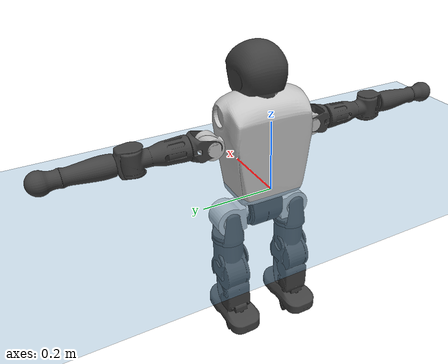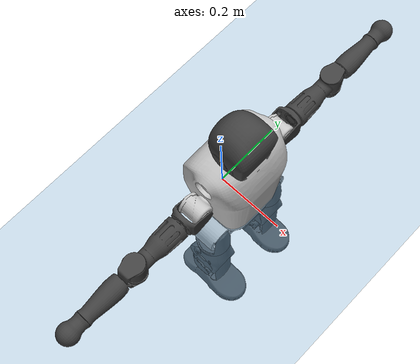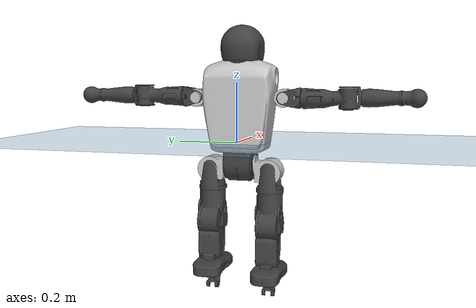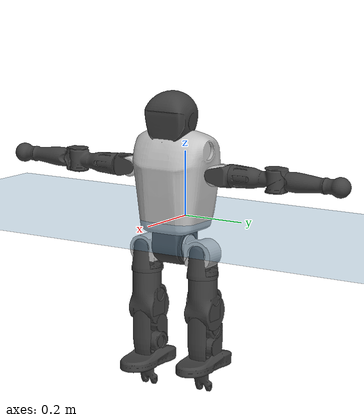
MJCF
<mujoco model="T1">
  <compiler angle="radian" assetdir="assets" balanceinertia="true" inertiafromgeom="false"/>

  <option timestep="0.005" density="1.2" viscosity="2e-05"/>

  <size nkey="1"/>

  <visual>
    <quality shadowsize="8192"/>
    <map shadowclip="0.5"/>
  </visual>

  <default>
    <default class="/">
      <joint armature="0.01" damping="0.01" frictionloss="0.1"/>
      <geom contype="0" conaffinity="0" group="1" solref="-1000 -80"/>
      <site size="0.01 0.005 0.005" group="5"/>
      <general forcelimited="true" biastype="affine" gainprm="25" biasprm="0 -25 -0.6"/>
      <default class="t1">
        <geom rgba="0.25 0.25 0.25 1"/>
        <default class="visual">
          <geom type="mesh" group="2"/>
        </default>
        <default class="collision">
          <geom group="3"/>
        </default>
        <default class="foot">
          <geom size="0.1115 0.05 0.015" type="box" condim="6" group="4" priority="1" solimp="0.015 1 0.015"/>
        </default>
        <default class="reward_collision_sphere">
          <geom group="5" rgba="1 0 0 1"/>
        </default>
      </default>
    </default>
  </default>

  <asset>
    <texture type="skybox" colorspace="auto" name="//unnamed_texture_0" builtin="gradient" rgb1="0.95 0.95 0.95" rgb2="0.95 0.95 0.95" width="100" height="600"/>
    <texture type="2d" colorspace="auto" name="texplane" builtin="checker" rgb1="0.345 0.575 0.748" rgb2="0.345 0.575 0.748" markrgb="1 1 1" width="512" height="512"/>
    <material name="MatPlane" class="/" texture="texplane" texuniform="true" texrepeat="2 2" specular="0.9"/>
    <mesh name="Trunk" class="/" file="Trunk.stl"/>
    <mesh name="H1" class="/" file="H1.stl"/>
    <mesh name="H2" class="/" file="H2.stl"/>
    <mesh name="AL1" class="/" file="AL1.stl"/>
    <mesh name="AL2" class="/" file="AL2.stl"/>
    <mesh name="AL3" class="/" file="AL3.stl"/>
    <mesh name="left_hand_link" class="/" file="left_hand_link.stl"/>
    <mesh name="AR1" class="/" file="AR1.stl"/>
    <mesh name="AR2" class="/" file="AR2.stl"/>
    <mesh name="AR3" class="/" file="AR3.stl"/>
    <mesh name="right_hand_link" class="/" file="right_hand_link.stl"/>
    <mesh name="Waist" class="/" file="Waist.stl"/>
    <mesh name="Hip_Pitch_Left" class="/" file="Hip_Pitch_Left.stl"/>
    <mesh name="Hip_Roll_Left" class="/" file="Hip_Roll_Left.stl"/>
    <mesh name="Hip_Yaw_Left" class="/" file="Hip_Yaw_Left.stl"/>
    <mesh name="Shank_Left" class="/" file="Shank_Left.stl"/>
    <mesh name="Ankle_Cross_Left" class="/" file="Ankle_Cross_Left.stl"/>
    <mesh name="left_foot_link" class="/" file="left_foot_link.stl"/>
    <mesh name="Hip_Pitch_Right" class="/" file="Hip_Pitch_Right.stl"/>
    <mesh name="Hip_Roll_Right" class="/" file="Hip_Roll_Right.stl"/>
    <mesh name="Hip_Yaw_Right" class="/" file="Hip_Yaw_Right.stl"/>
    <mesh name="Shank_Right" class="/" file="Shank_Right.stl"/>
    <mesh name="Ankle_Cross_Right" class="/" file="Ankle_Cross_Right.stl"/>
    <mesh name="right_foot_link" class="/" file="right_foot_link.stl"/>
  </asset>

  <worldbody>
    <geom name="floor" class="/" size="100 100 0.125" type="plane" group="0" material="MatPlane"/>
    <light name="toplight_shadow" class="/" pos="0 0 5" dir="0.0990148 0.0990148 -0.990148" type="directional" ambient="0.04 0.04 0.04" diffuse="0.55 0.55 0.55" specular="0.12 0.12 0.12"/>
    <light name="toplight_fill" class="/" pos="0 0 5" dir="0.0990148 0.0990148 -0.990148" type="directional" castshadow="false" ambient="0.04 0.04 0.04" diffuse="0.3 0.3 0.3" specular="0.08 0.08 0.08"/>
    <body name="trunk" childclass="t1" pos="-0.000101289 -0.000222533 -0.00017294" quat="1 -0.000619335 0.000161716 8.33816e-06">
      <inertial pos="0.0523307 -0.00244872 0.0688699" quat="0.999985 -0.00194022 0.000302949 0.00519289" mass="8.03271" diaginertia="0.075185 0.072379 0.00814243"/>
      <joint name="//unnamed_joint_0" type="free" armature="0" damping="0" frictionloss="0"/>
      <geom name="//unnamed_geom_1" class="visual" rgba="0.76 0.76 0.76 1" mesh="Trunk"/>
      <geom name="//unnamed_geom_2" class="collision" size="0.0652269 0.0869692 0.130454" pos="0.0574139 0 0.0807069" type="box"/>
      <geom name="//unnamed_geom_3" class="reward_collision_sphere" size="0.100015" pos="0.0574139 0 0.0672558"/>
      <geom name="//unnamed_geom_4" class="reward_collision_sphere" size="0.0130454" pos="0.0574139 0.0832675 0"/>
      <geom name="//unnamed_geom_5" class="reward_collision_sphere" size="0.0130454" pos="0.0574139 -0.0832675 0"/>
      <geom name="//unnamed_geom_6" class="reward_collision_sphere" size="0.0130454" pos="0.0574139 0.104819 0.12106"/>
      <geom name="//unnamed_geom_7" class="reward_collision_sphere" size="0.0130454" pos="0.0574139 -0.104819 0.12106"/>
      <site name="imu" pos="-0.0152329 0.00642298 0.0125803" size="0.00869692"/>
      <camera name="track" pos="0 -1.95924 0" quat="0.707107 0.707107 0 0" mode="trackcom"/>
      <camera name="ego_camera" pos="0.116742 0 0.282474" quat="-0.5 -0.5 0.5 0.5"/>
      <body name="H1" pos="0.0562801 -0.00186003 0.163448" quat="1 -0.000571121 0.000608233 -0.000348272">
        <inertial pos="0.000108686 -0.00356839 0.0363735" quat="0.765866 -0.0158529 -0.011018 0.64271" mass="0.283817" diaginertia="0.000187793 0.000200771 2.01957e-05"/>
        <joint name="AAHead_yaw" pos="0 0 0" axis="0.00327121 9.17312e-05 0.999995" range="-1.52438 1.59482" armature="0.00980474" damping="0.0201336" frictionloss="0.0754573"/>
        <geom name="//unnamed_geom_8" class="visual" mesh="H1"/>
        <body name="H2" pos="-0.00125265 0.00179153 0.0394409" quat="1 -7.3125e-05 -0.000141731 -0.000355099">
          <inertial pos="0.00406786 -0.00101428 0.0673163" quat="0.990065 0.0998646 -0.0731952 -0.0666401" mass="0.398677" diaginertia="0.00168204 0.00167323 0.000231196"/>
          <joint name="Head_pitch" pos="0 0 0" axis="0.00950072 -0.999915 -0.00897525" stiffness="0.00248569" range="-1.22424 0.368047" armature="0.00907926" damping="0.000458027" frictionloss="0.0889723"/>
          <geom name="//unnamed_geom_9" class="visual" mesh="H2"/>
          <geom name="//unnamed_geom_10" class="collision" size="0.0695753" pos="0.00956899 0 0.0739813"/>
          <geom name="//unnamed_geom_11" class="reward_collision_sphere" size="0.0782722" pos="0.019138 0 0.0672558"/>
        </body>
      </body>
      <body name="AL1" pos="0.0550822 0.104813 0.148298" quat="0.999999 -0.000678389 0.00096395 0.000873725">
        <inertial pos="0.00194739 0.0462795 -0.00192678" quat="0.498291 0.499714 -0.510184 0.491634" mass="0.334032" diaginertia="0.00105646 0.00115912 4.1051e-05"/>
        <joint name="Left_Shoulder_Pitch" pos="0 0 0" axis="0.00992288 0.99991 -0.00901986" stiffness="0.011866" range="-3.27912 1.19687" armature="0.00964712" damping="0.0192897" frictionloss="0.0878254"/>
        <geom name="//unnamed_geom_12" class="visual" rgba="0.76 0.76 0.76 1" mesh="AL1"/>
        <body name="AL2" pos="0.00353973 0.0446567 0.00277716" quat="0.999999 -0.000861031 0.00125277 -5.3558e-05">
          <inertial pos="0.00672744 0.0381743 -0.000134969" quat="0.486932 0.519168 -0.48673 0.506415" mass="0.0980188" diaginertia="0.000310797 0.000303278 2.30236e-05"/>
          <joint name="Left_Shoulder_Roll" pos="0 0 0" axis="-0.999825 -0.00596175 0.0177413" range="-1.60038 1.71144" armature="0.00961951" damping="0.0205425" frictionloss="0.0754885"/>
          <geom name="//unnamed_geom_13" class="visual" mesh="AL2"/>
          <body name="AL3" pos="0.00303079 0.057928 0.00209503" quat="0.999998 0.00137754 4.31512e-05 0.00116486">
            <inertial pos="0.00116583 0.0841379 0.000111941" quat="0.706158 0.70805 0.00183872 0.00182964" mass="0.654012" diaginertia="0.0100154 0.0112683 8.11202e-05"/>
            <joint name="Left_Elbow_Pitch" pos="0 0 0" axis="0.00112894 -0.999984 0.00548561" stiffness="0.0210626" range="-2.31831 2.24549" armature="0.00848454" damping="0.0117427" frictionloss="0.0833805"/>
            <geom name="//unnamed_geom_14" class="visual" mesh="AL3"/>
            <geom name="//unnamed_geom_15" class="collision" size="0.0260907 0.0652269" pos="0 0.0489809 0" quat="0.707105 0.707108 0 0" type="cylinder"/>
            <geom name="//unnamed_geom_16" class="reward_collision_sphere" size="0.0313089"/>
            <body name="left_hand_link" pos="0.00115167 0.141366 0.00172723" quat="0.999999 -0.000566083 0.000418287 -0.000731873">
              <inertial pos="-0.000455303 0.105221 0.00207035" quat="0.711302 0.702869 0.00375831 0.00312749" mass="0.223573" diaginertia="0.00701137 0.00761502 3.0052e-05"/>
              <joint name="Left_Elbow_Yaw" pos="0 0 0" axis="-0.000322448 -0.00347399 0.999994" range="-2.4349 -0.00758843" armature="0.00854979" damping="0.00564715" frictionloss="0.0737565"/>
              <geom name="//unnamed_geom_17" class="visual" mesh="left_hand_link"/>
              <geom name="//unnamed_geom_18" class="collision" size="0.0260907 0.076098" pos="0 0.12735 0" quat="0.707105 0.707108 0 0" type="cylinder"/>
              <geom name="//unnamed_geom_19" class="reward_collision_sphere" size="0.0434846"/>
              <geom name="//unnamed_geom_20" class="reward_collision_sphere" size="0.0304392" pos="0 0.107758 0"/>
              <geom name="//unnamed_geom_21" class="reward_collision_sphere" size="0.0304392" pos="0 0.210618 0"/>
            </body>
          </body>
        </body>
      </body>
      <body name="AR1" pos="0.0559251 -0.1033 0.149007" quat="0.999999 -0.00107601 -0.00017821 -0.000411985">
        <inertial pos="-0.00120554 -0.0463908 0.00206357" quat="0.502411 0.495717 -0.504843 0.496972" mass="0.353237" diaginertia="0.00107964 0.00111383 3.991e-05"/>
        <joint name="Right_Shoulder_Pitch" pos="0 0 0" axis="-0.00441685 -0.999934 -0.0106405" range="-1.27 3.26673" armature="0.00882976" damping="0.00330374" frictionloss="0.0886343"/>
        <geom name="//unnamed_geom_22" class="visual" rgba="0.76 0.76 0.76 1" mesh="AR1"/>
        <body name="AR2" pos="0.00194686 -0.045947 -0.000490585" quat="0.999999 -8.82026e-05 -0.000843908 0.000660188">
          <inertial pos="0.00191797 -0.0344829 -0.000600012" quat="0.517336 0.489134 -0.50558 0.487339" mass="0.11114" diaginertia="0.000338729 0.000334923 2.4263e-05"/>
          <joint name="Right_Shoulder_Roll" pos="0 0 0" axis="-0.99999 -0.00265637 -0.00350721" stiffness="0.0023468" range="-1.70111 1.61198" armature="0.00840206" damping="0.0205321" frictionloss="0.0943111"/>
          <geom name="//unnamed_geom_23" class="visual" mesh="AR2"/>
          <body name="AR3" pos="-0.0020391 -0.0624138 -0.001226" quat="1 -6.52133e-05 0.000388656 -0.000494677">
            <inertial pos="-8.23606e-05 -0.0863076 -0.00149507" quat="0.707642 0.706344 -0.0173805 -0.00440117" mass="0.649451" diaginertia="0.0100007 0.0116345 8.21778e-05"/>
            <joint name="Right_Elbow_Pitch" pos="0 0 0" axis="-0.000110434 0.999998 0.00173756" range="-2.26585 2.27835" armature="0.00774238" damping="0.0129846" frictionloss="0.0770078"/>
            <geom name="//unnamed_geom_24" class="visual" mesh="AR3"/>
            <geom name="//unnamed_geom_25" class="collision" size="0.0260907 0.0652269" pos="0 -0.0489809 0" quat="0.707105 0.707108 0 0" type="cylinder"/>
            <geom name="//unnamed_geom_26" class="reward_collision_sphere" size="0.0313089"/>
            <body name="right_hand_link" pos="0.00123165 -0.145925 0.00270449" quat="0.999999 0.000519868 -6.88235e-05 0.000919362">
              <inertial pos="0.00186037 -0.106939 -0.00141906" quat="0.705639 0.708533 -0.00743494 -8.9503e-05" mass="0.22819" diaginertia="0.00666953 0.00750872 3.05448e-05"/>
              <joint name="Right_Elbow_Yaw" pos="0 0 0" axis="-0.00860383 -0.00503551 0.99995" range="0.00426437 2.48341" armature="0.00730109" damping="0.00451287" frictionloss="0.0888205"/>
              <geom name="//unnamed_geom_27" class="visual" mesh="right_hand_link"/>
              <geom name="//unnamed_geom_28" class="collision" size="0.0260907 0.076098" pos="0 -0.12735 0" quat="0.707105 0.707108 0 0" type="cylinder"/>
              <geom name="//unnamed_geom_29" class="reward_collision_sphere" size="0.0434846"/>
              <geom name="//unnamed_geom_30" class="reward_collision_sphere" size="0.0304392" pos="0 -0.107758 0"/>
              <geom name="//unnamed_geom_31" class="reward_collision_sphere" size="0.0304392" pos="0 -0.210618 0"/>
            </body>
          </body>
        </body>
      </body>
      <body name="Waist" pos="0.061565 0.0032677 -0.0773503" quat="1 -0.000644612 2.53941e-05 -0.00037155">
        <inertial pos="-0.000296072 -0.0011603 0.00431101" quat="0.984224 -0.00739538 -0.176437 0.0108715" mass="1.72501" diaginertia="0.00430506 0.00492417 0.000671055"/>
        <joint name="Waist" pos="0 0 0" axis="-0.00483132 -0.00915376 0.999946" range="-1.6334 1.61556" armature="0.00903085" damping="0.0250355" frictionloss="0.0818227"/>
        <geom name="//unnamed_geom_32" class="visual" mesh="Waist"/>
        <body name="Hip_Pitch_Left" pos="0.00227591 0.102638 0.00142413" quat="0.999999 -0.000141256 0.00114751 -9.49443e-05">
          <inertial pos="-0.000156528 -0.0100309 -0.0119801" quat="0.975371 0.220325 0.0104173 -4.31974e-06" mass="0.641933" diaginertia="0.00141209 0.00123868 0.000167915"/>
          <joint name="Left_Hip_Pitch" pos="0 0 0" axis="-0.00498628 0.999768 -0.0209727" stiffness="0.00448814" range="-1.7748 1.59476" armature="0.00888123" damping="0.0273829" frictionloss="0.0875083"/>
          <geom name="//unnamed_geom_33" class="visual" rgba="0.76 0.76 0.76 1" mesh="Hip_Pitch_Left"/>
          <body name="Hip_Roll_Left" pos="0.00223289 -0.000501161 -0.0144061" quat="1 0.000307989 -0.000562831 0.000216337">
            <inertial pos="0.00361853 0.0010687 -0.0393488" quat="0.708928 -0.0040862 -0.00449253 0.705255" mass="0.252069" diaginertia="0.00138324 0.00138323 7.12569e-05"/>
            <joint name="Left_Hip_Roll" pos="0 0 0" axis="-0.999997 -0.0010635 -0.00213567" range="-1.51186 0.152482" armature="0.0087081" damping="0.00605994" frictionloss="0.0861199"/>
            <geom name="//unnamed_geom_34" class="visual" mesh="Hip_Roll_Left"/>
            <geom name="//unnamed_geom_35" class="reward_collision_sphere" size="0.047833"/>
            <body name="Hip_Yaw_Left" pos="-0.00226291 0.000941803 -0.0524382" quat="1 0.000498306 -6.35203e-05 -5.30574e-05">
              <inertial pos="-0.00529963 -0.00111492 -0.0614985" quat="0.704122 -0.0326285 -0.0208885 0.709022" mass="1.3895" diaginertia="0.021145 0.0237919 0.000366078"/>
              <joint name="Left_Hip_Yaw" pos="0 0 0" axis="0.0070931 0.000252173 -0.999975" stiffness="0.0118659" range="-1.00206 1.05586" armature="0.00878682" damping="0" frictionloss="0.0864519"/>
              <geom name="//unnamed_geom_36" class="visual" mesh="Hip_Yaw_Left"/>
              <geom name="//unnamed_geom_37" class="collision" size="0.0434846 0.0695753" type="cylinder"/>
              <body name="Shank_Left" pos="-0.0118168 -0.00210284 -0.0907284" quat="1 0.000277083 0.000520792 0.000689319">
                <inertial pos="-0.00545437 0.00269204 -0.0819846" quat="0.997579 0.0015105 -0.0238735 0.0652927" mass="1.14785" diaginertia="0.0266103 0.0309169 0.000247161"/>
                <joint name="Left_Knee_Pitch" pos="0 0 0" axis="0.00210384 0.999998 -0.000433527" range="0.0469933 2.34121" armature="0.00985325" damping="0.00713987" frictionloss="0.0829986"/>
                <geom name="//unnamed_geom_38" class="visual" mesh="Shank_Left"/>
                <geom name="//unnamed_geom_39" class="collision" size="0.0434846 0.0652269" pos="0 0 -0.0807069" type="cylinder"/>
                <geom name="//unnamed_geom_40" class="reward_collision_sphere" size="0.0565299"/>
                <body name="Ankle_Cross_Left" pos="-0.00284547 -0.00103999 -0.186549" quat="1 9.46793e-05 0.000334426 0.000625282">
                  <inertial pos="-0.0050153 0.00175698 -0.00216089" quat="0.432079 0.558147 0.552008 0.443922" mass="0.0482559" diaginertia="2.24999e-05 2.24562e-05 1.50044e-06"/>
                  <joint name="Left_Ankle_Pitch" pos="0 0 0" axis="-0.0072031 0.999956 -0.00593696" range="-0.800098 0.380821" armature="0.00790161" damping="0.0277237" frictionloss="0.0816721"/>
                  <geom name="//unnamed_geom_41" class="visual" mesh="Ankle_Cross_Left"/>
                  <body name="left_foot_link" pos="-0.00154935 -0.00106347 -0.00552808" quat="0.999999 -0.000900423 -0.000435249 -0.000748783">
                    <inertial pos="-0.00259658 0.00198951 -0.00371681" quat="-0.00170459 0.620174 0.000956841 0.784462" mass="0.438605" diaginertia="0.00218723 0.0021549 0.000311185"/>
                    <joint name="Left_Ankle_Roll" pos="0 0 0" axis="-0.999887 -0.000431307 -0.0150136" stiffness="0.00713801" range="-0.463004 0.392728" armature="0.00870486" damping="0" frictionloss="0.0930672"/>
                    <geom name="//unnamed_geom_42" class="visual" mesh="left_foot_link"/>
                    <geom name="left_foot" class="foot" size="0.111171 0.0334984 0.0141019" pos="0.00956899 0 -0.0100884"/>
                    <geom name="//unnamed_geom_44" class="reward_collision_sphere" size="0.045224" pos="0.00956899 0 -0.0100884"/>
                    <geom name="//unnamed_geom_45" class="reward_collision_sphere" size="0.0260907" pos="0.0909054 -0.0225312 -0.0100884"/>
                    <geom name="//unnamed_geom_46" class="reward_collision_sphere" size="0.0260907" pos="-0.0669829 -0.0225312 -0.0100884"/>
                    <site name="left_foot" class="foot" pos="0.00956899 0 -0.0100884" size="0.00869692"/>
                  </body>
                </body>
              </body>
            </body>
          </body>
        </body>
        <body name="Hip_Pitch_Right" pos="-0.00144587 -0.101825 -0.00357667" quat="1 0.00094189 -0.000160364 -1.11233e-05">
          <inertial pos="0.00044828 0.0103933 -0.0142089" quat="0.972452 -0.232584 0.0141816 -0.00634525" mass="0.691987" diaginertia="0.00150079 0.00136262 0.000177378"/>
          <joint name="Right_Hip_Pitch" pos="0 0 0" axis="0.00114511 -0.999999 0.000234261" range="-1.55126 1.80653" armature="0.00841596" damping="0" frictionloss="0.0944181"/>
          <geom name="//unnamed_geom_47" class="visual" rgba="0.76 0.76 0.76 1" mesh="Hip_Pitch_Right"/>
          <body name="Hip_Roll_Right" pos="-0.000402182 -0.00181734 -0.0131138" quat="0.999999 0.000390339 0.00118917 -0.00106668">
            <inertial pos="-0.00164305 0.00191608 -0.0368937" quat="0.707532 -0.00626677 -0.00491342 0.706637" mass="0.251634" diaginertia="0.00138098 0.00140862 7.06626e-05"/>
            <joint name="Right_Hip_Roll" pos="0 0 0" axis="-0.999986 -0.00500283 0.00167986" range="-0.196433 1.56917" armature="0.00897998" damping="0.0186171" frictionloss="0.0858713"/>
            <geom name="//unnamed_geom_48" class="visual" mesh="Hip_Roll_Right"/>
            <geom name="//unnamed_geom_49" class="reward_collision_sphere" size="0.047833"/>
            <body name="Hip_Yaw_Right" pos="0.00111414 0.000180246 -0.0585013" quat="1 9.00391e-05 0.000600155 -0.000333833">
              <inertial pos="-0.00499485 -0.00308105 -0.0579324" quat="0.711945 -0.0283526 -0.034059 0.700836" mass="1.44794" diaginertia="0.0198844 0.0214684 0.00035967"/>
              <joint name="Right_Hip_Yaw" pos="0 0 0" axis="-0.0164835 0.00528195 -0.99985" stiffness="0.0166473" range="-0.967023 1.06941" armature="0.00860406" damping="0.0173149" frictionloss="0.0944011"/>
              <geom name="//unnamed_geom_50" class="visual" mesh="Hip_Yaw_Right"/>
              <geom name="//unnamed_geom_51" class="collision" size="0.0434846 0.0695753" type="cylinder"/>
              <body name="Shank_Right" pos="-0.0114847 0.00079348 -0.0932642" quat="1 -0.000379928 0.000461322 0.000645181">
                <inertial pos="-0.00671806 0.00142349 -0.0849101" quat="0.999278 -0.00285714 -0.0248105 -0.028633" mass="1.1048" diaginertia="0.0279943 0.0312258 0.000263979"/>
                <joint name="Right_Knee_Pitch" pos="0 0 0" axis="-0.0123493 -0.999869 -0.0104368" stiffness="0.00225424" range="-2.39631 0.0352888" armature="0.00910183" damping="0.017847" frictionloss="0.0973481"/>
                <geom name="//unnamed_geom_52" class="visual" mesh="Shank_Right"/>
                <geom name="//unnamed_geom_53" class="collision" size="0.0434846 0.0652269" pos="0 0 -0.0807069" type="cylinder"/>
                <geom name="//unnamed_geom_54" class="reward_collision_sphere" size="0.0565299"/>
                <body name="Ankle_Cross_Right" pos="0.00111829 -0.000385284 -0.189031" quat="1 -2.64245e-05 -2.45996e-06 -0.000580598">
                  <inertial pos="-0.00370191 -0.00121515 -0.00428582" quat="0.43874 0.553217 0.558665 0.435145" mass="0.0484847" diaginertia="2.30422e-05 2.31029e-05 1.51888e-06"/>
                  <joint name="Right_Ankle_Pitch" pos="0 0 0" axis="0.0137628 -0.999854 0.0100819" stiffness="0.0194098" range="-0.335165 0.859481" armature="0.00860153" damping="0.00439371" frictionloss="0.100871"/>
                  <geom name="//unnamed_geom_55" class="visual" mesh="Ankle_Cross_Right"/>
                  <body name="right_foot_link" pos="0.000550414 -0.0019309 -0.00757883" quat="1 0.000471395 0.000706636 -0.000252203">
                    <inertial pos="0.00255677 -0.00167706 -0.00512245" quat="-0.00261103 0.627385 -0.0032337 0.778698" mass="0.460519" diaginertia="0.00220876 0.00226008 0.000301726"/>
                    <joint name="Right_Ankle_Roll" pos="0 0 0" axis="-0.999999 0.000654867 -0.00111788" range="-0.506017 0.483309" armature="0.00858396" damping="0.0111298" frictionloss="0.0914255"/>
                    <geom name="//unnamed_geom_56" class="visual" mesh="right_foot_link"/>
                    <geom name="right_foot" class="foot" size="0.112623 0.0381655 0.0126777" pos="0.00956899 0 -0.0100884"/>
                    <geom name="//unnamed_geom_58" class="reward_collision_sphere" size="0.0347877"/>
                    <geom name="//unnamed_geom_59" class="reward_collision_sphere" size="0.0260907" pos="0.00956899 0 -0.0100884"/>
                    <geom name="//unnamed_geom_60" class="reward_collision_sphere" size="0.0260907" pos="0.0909054 0.0225312 -0.0100884"/>
                    <geom name="//unnamed_geom_61" class="reward_collision_sphere" size="0.0260907" pos="-0.0669829 0.0225312 -0.0100884"/>
                    <site name="right_foot" class="foot" pos="0.00956899 0 -0.0100884" size="0.00869692"/>
                  </body>
                </body>
              </body>
            </body>
          </body>
        </body>
      </body>
    </body>
  </worldbody>

  <contact>
    <pair class="/" geom1="floor" geom2="left_foot" name="//unnamed_contact_0"/>
    <pair class="/" geom1="floor" geom2="right_foot" name="//unnamed_contact_1"/>
  </contact>

  <actuator>
    <general name="AAHead_yaw" class="/" joint="AAHead_yaw" forcerange="-5.58921 5.58921" gainprm="22.1043" biasprm="0 -22.1043 -0.565789"/>
    <general name="Head_pitch" class="/" joint="Head_pitch" forcerange="-6.43911 6.43911" gainprm="22.1043" biasprm="0 -22.1043 -0.565789"/>
    <general name="Left_Shoulder_Pitch" class="/" joint="Left_Shoulder_Pitch" forcerange="-16.1759 16.1759" gainprm="22.1043" biasprm="0 -22.1043 -0.565789"/>
    <general name="Left_Shoulder_Roll" class="/" joint="Left_Shoulder_Roll" forcerange="-15.9787 15.9787" gainprm="22.1043" biasprm="0 -22.1043 -0.565789"/>
    <general name="Left_Elbow_Pitch" class="/" joint="Left_Elbow_Pitch" forcerange="-15.298 15.298" gainprm="22.1043" biasprm="0 -22.1043 -0.565789"/>
    <general name="Left_Elbow_Yaw" class="/" joint="Left_Elbow_Yaw" forcerange="-14.5237 14.5237" gainprm="22.1043" biasprm="0 -22.1043 -0.565789"/>
    <general name="Right_Shoulder_Pitch" class="/" joint="Right_Shoulder_Pitch" forcerange="-15.7296 15.7296" gainprm="22.1043" biasprm="0 -22.1043 -0.565789"/>
    <general name="Right_Shoulder_Roll" class="/" joint="Right_Shoulder_Roll" forcerange="-15.786 15.786" gainprm="22.1043" biasprm="0 -22.1043 -0.565789"/>
    <general name="Right_Elbow_Pitch" class="/" joint="Right_Elbow_Pitch" forcerange="-14.1966 14.1966" gainprm="22.1043" biasprm="0 -22.1043 -0.565789"/>
    <general name="Right_Elbow_Yaw" class="/" joint="Right_Elbow_Yaw" forcerange="-15.0671 15.0671" gainprm="22.1043" biasprm="0 -22.1043 -0.565789"/>
    <general name="Waist" class="/" joint="Waist" forcerange="-28.4281 28.4281" gainprm="22.1043" biasprm="0 -22.1043 -0.565789"/>
    <general name="Left_Hip_Pitch" class="/" joint="Left_Hip_Pitch" forcerange="-43.8091 43.8091" gainprm="22.1043" biasprm="0 -22.1043 -0.565789"/>
    <general name="Left_Hip_Roll" class="/" joint="Left_Hip_Roll" forcerange="-28.5419 28.5419" gainprm="22.1043" biasprm="0 -22.1043 -0.565789"/>
    <general name="Left_Hip_Yaw" class="/" joint="Left_Hip_Yaw" forcerange="-28.9131 28.9131" gainprm="22.1043" biasprm="0 -22.1043 -0.565789"/>
    <general name="Left_Knee_Pitch" class="/" joint="Left_Knee_Pitch" forcerange="-49.7341 49.7341" gainprm="22.1043" biasprm="0 -22.1043 -0.565789"/>
    <general name="Left_Ankle_Pitch" class="/" joint="Left_Ankle_Pitch" forcerange="-18.7917 18.7917" gainprm="22.1043" biasprm="0 -22.1043 -0.565789"/>
    <general name="Left_Ankle_Roll" class="/" joint="Left_Ankle_Roll" forcerange="-13.3126 13.3126" gainprm="22.1043" biasprm="0 -22.1043 -0.565789"/>
    <general name="Right_Hip_Pitch" class="/" joint="Right_Hip_Pitch" forcerange="-35.8861 35.8861" gainprm="22.1043" biasprm="0 -22.1043 -0.565789"/>
    <general name="Right_Hip_Roll" class="/" joint="Right_Hip_Roll" forcerange="-28.5571 28.5571" gainprm="22.1043" biasprm="0 -22.1043 -0.565789"/>
    <general name="Right_Hip_Yaw" class="/" joint="Right_Hip_Yaw" forcerange="-28.8328 28.8328" gainprm="22.1043" biasprm="0 -22.1043 -0.565789"/>
    <general name="Right_Knee_Pitch" class="/" joint="Right_Knee_Pitch" forcerange="-54.8603 54.8603" gainprm="22.1043" biasprm="0 -22.1043 -0.565789"/>
    <general name="Right_Ankle_Pitch" class="/" joint="Right_Ankle_Pitch" forcerange="-15.9896 15.9896" gainprm="22.1043" biasprm="0 -22.1043 -0.565789"/>
    <general name="Right_Ankle_Roll" class="/" joint="Right_Ankle_Roll" forcerange="-14.1793 14.1793" gainprm="22.1043" biasprm="0 -22.1043 -0.565789"/>
  </actuator>

  <sensor>
    <gyro site="imu" name="imu_angular_velocity"/>
    <velocimeter site="imu" name="imu_linear_velocity"/>
    <framelinvel objtype="site" objname="left_foot" name="left_foot_global_linear_velocity"/>
    <framelinvel objtype="site" objname="right_foot" name="right_foot_global_linear_velocity"/>
  </sensor>

  <keyframe>
    <key name="home" qpos="0 0 0.6385 1 0 0 0 0 0 0 1.4 0 -0.4 0 -1.4 0 0.4 0 -0.4 0 0 0.8 -0.4 0 0.4 0 0 -0.8 0.4 0"/>
  </keyframe>
</mujoco>
